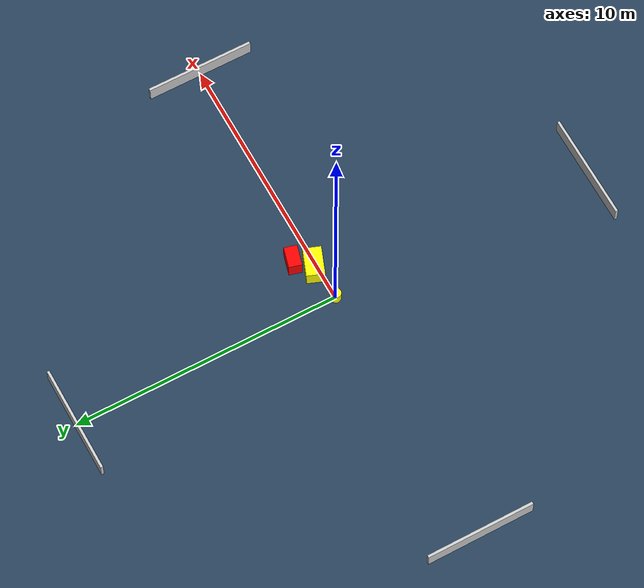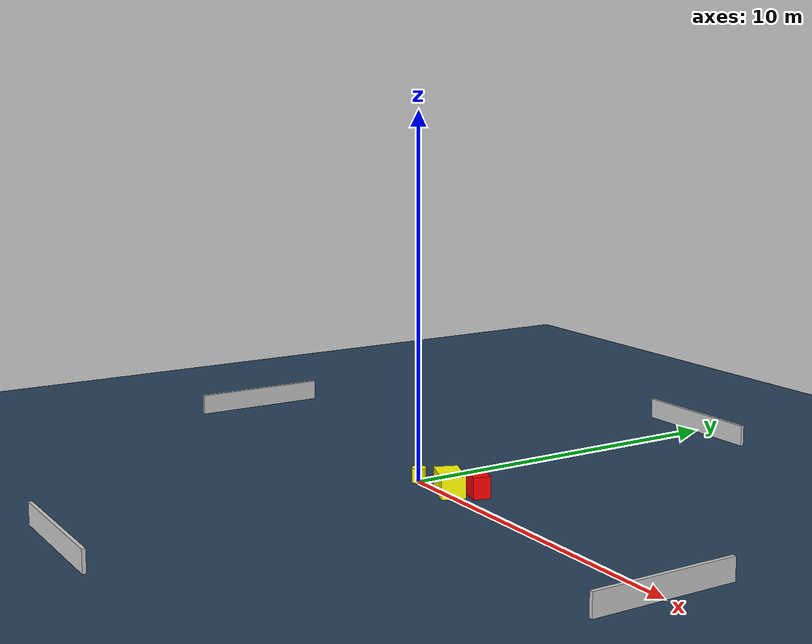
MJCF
<?xml version="1.0" ?>
<mujoco model="generated_environment">
  <option timestep="0.01" integrator="RK4" cone="elliptic"/>
  <default>
    <geom density="1"/>
  </default>
  <asset>
    <texture builtin="gradient" height="3072" name="skybox" rgb1="0.3 0.5 0.7" rgb2="0 0 0" type="skybox" width="512"/>
    <texture builtin="checker" height="300" name="groundplane" rgb1="0.2 0.3 0.4" rgb2="0.1 0.2 0.3" type="2d" width="300"/>
    <material name="groundplane" reflectance="0.2" texrepeat="5 5" texture="groundplane"/>
  </asset>
  <worldbody>
    <light dir="0 0 -1" directional="true" pos="0 0 1.5"/>
    <geom condim="3" friction="0.5 0.005 0.001" material="groundplane" name="floor" pos="0 0 0" size="0 0 0.05" type="plane"/>
    <body name="walls">
      <geom name="wall_1" condim="4" pos="-10.0 0.0 0.3" rgba="0.800000011920929 0.800000011920929 0.800000011920929 1.0" size="0.05 2.0 0.3" type="box"/>
      <geom name="wall_2" condim="4" pos="10.0 0.0 0.3" rgba="0.800000011920929 0.800000011920929 0.800000011920929 1.0" size="0.05 2.0 0.3" type="box"/>
      <geom name="wall_3" condim="4" pos="0.0 -10.0 0.3" rgba="0.800000011920929 0.800000011920929 0.800000011920929 1.0" size="2.0 0.05 0.3" type="box"/>
      <geom name="wall_4" condim="4" pos="0.0 10.0 0.3" rgba="0.800000011920929 0.800000011920929 0.800000011920929 1.0" size="2.0 0.05 0.3" type="box"/>
    </body>
    <body name="robot">
      <joint name="joint_x" type="slide" pos="0 0 0" axis="1 0 0"/>
      <joint name="joint_y" type="slide" pos="0 0 0" axis="0 1 0"/>
      <geom name="robot" type="cylinder" pos="0.0 0.0 0.2" size="0.2 0.2 0.0" mass="5.0" friction="1.0 0.005 0.0001" condim="4" rgba="1.0 1.0 0.0 1.0"/>
    </body>
    <body name="obstacle_1_movable">
      <geom name="obstacle_1_movable" condim="4" pos="1.3350097288127087 0.12500933150105564 0.3" euler="0 0 338.8982964794653" friction="0.0 0.005 0.001" rgba="1.0 1.0 0.0 1.0" size="0.5359916262811538 0.33093217804264075 0.3" type="box" mass="0.1"/>
      <joint type="free"/>
    </body>
    <body name="obstacle_2_static">
      <geom name="obstacle_2_static" condim="4" pos="1.8419069731251279 0.6676164880799962 0.3" euler="0 0 164.73778335977727" friction="0.0 0.005 0.001" rgba="1.0 0.0 0.0 1.0" size="0.3910797976628372 0.24135556172708938 0.3" type="box"/>
    </body>
  </worldbody>
  <actuator>
    <motor name="actuator_x" joint="joint_x" gear="1" ctrlrange="-1 1"/>
    <motor name="actuator_y" joint="joint_y" gear="1" ctrlrange="-1 1"/>
  </actuator>
</mujoco>
